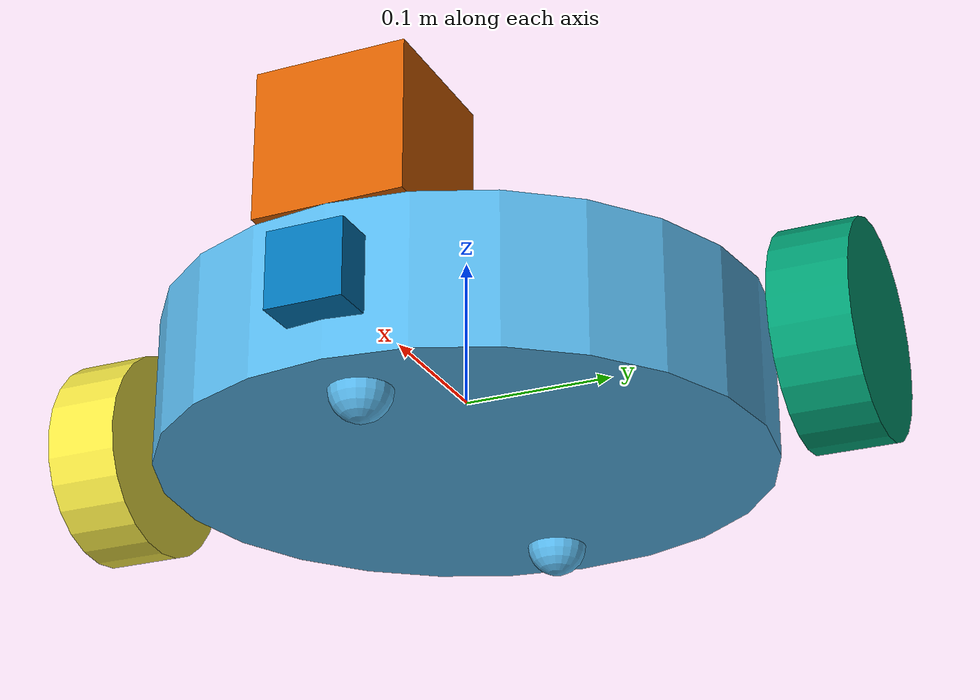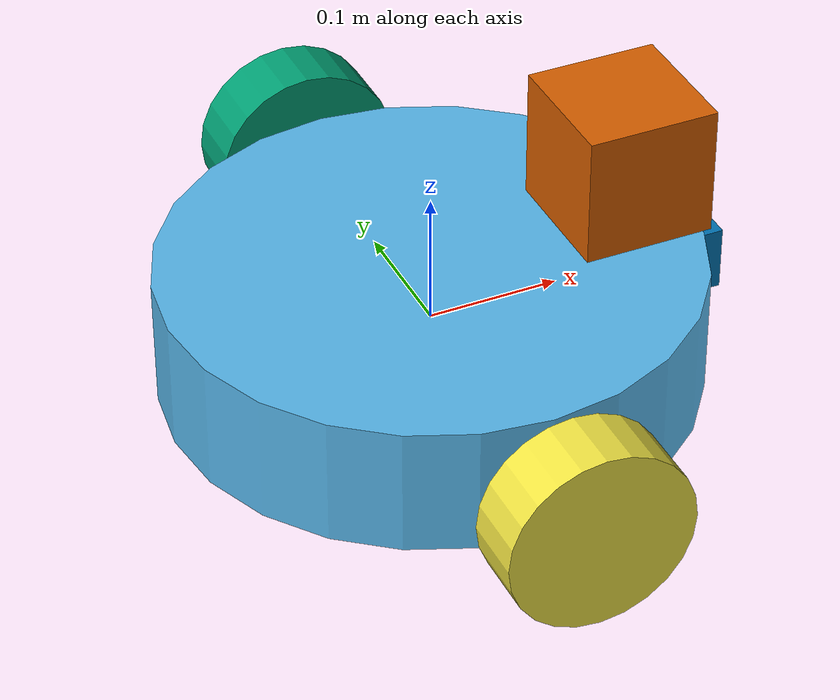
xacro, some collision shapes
<?xml version='1.0'?>

<robot name="my_robot" xmlns:xacro="http://www.ros.org/wiki/xacro">
<xacro:include filename="$(find my_robot)/urdf/my_robot.gazebo" />

<xacro:include filename="default.xacro" />
<xacro:include filename="inertia.xacro" />
<xacro:include filename="chasis.xacro" />
<xacro:include filename="wheel.xacro" />
<xacro:include filename="wheel_with_joint.xacro" />
<xacro:include filename="camera.xacro" />
<xacro:include filename="lidar.xacro" />

	<xacro:wheel_with_joint parent_name="chassis" left="1" radius="${wheel_radius}" heigth="${wheel_heigth}" jointX="0" jointY="${chassis_r+wheel_heigth}" jointZ="0">
	</xacro:wheel_with_joint>
    <xacro:wheel_with_joint parent_name="chassis" left="0" radius="${wheel_radius}" heigth="${wheel_heigth}" jointX="0" jointY="${chassis_r+wheel_heigth}" jointZ="0">
	</xacro:wheel_with_joint>

    <xacro:camera name="camera" />
    <xacro:lidar name="hokuyo" />
</robot>

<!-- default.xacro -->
<robot name="my_robot" xmlns:xacro="http://www.ros.org/wiki/xacro">
	<xacro:property name="wheel_radius" value="0.07"/>
	<xacro:property name="wheel_heigth" value="0.05"/>

	<xacro:property name="wheel_mass" value="5"/>
	<xacro:property name="wheel_origin_angle" value="0 1.5707 1.5707"/>
	<xacro:property name="wheel_origin_position" value="0 0 0"/>

	<xacro:property name="chassis_r" value=".2"/>
	<xacro:property name="chassis_h" value=".1"/>

</robot>

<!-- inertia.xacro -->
<robot name="my_robot" xmlns:xacro="http://www.ros.org/wiki/xacro">

	<xacro:macro name="default_inertial" params="mass">
	<inertial>
		<origin xyz="0 0 0" rpy="0 1.5707 1.5707"/>
		<mass value="${mass}" />
		<inertia ixx="0.1" ixy="0.0" ixz="0.0"
			 iyy="0.1" iyz="0.0" izz="0.1" />
	</inertial>
	</xacro:macro>

	<xacro:macro name="default_inertial_cube" params="mass x y z origin_xyz origin_rpy">

		<inertial>

			<origin xyz="${origin_xyz}" rpy="${origin_rpy}"/>

			<mass value="${mass}" />

			<inertia ixx="${1/12*mass*(z*z+x*x)}" ixy="0.0" ixz="0.0"

				 iyy="${1/12*mass*(y*y+x*x)}" iyz="0.0" izz="${1/12*mass*(y*y+z*z)}" />

		</inertial>

 	</xacro:macro>

	<xacro:macro name="default_inertial_sphere" params="mass r origin_xyz origin_rpy">

		<inertial>

			<origin xyz="${origin_xyz}" rpy="${origin_rpy}"/>

			<mass value="${mass}" />

			<inertia ixx="${2/5*mass*(r*r)}" ixy="0.0" ixz="0.0"

				 iyy="${2/5*mass*(r*r)}" iyz="0.0" izz="${2/5*mass*(r*r)}" />

		</inertial>

 	</xacro:macro>

	<xacro:macro name="default_inertial_cilinder" params="mass r h origin_xyz origin_rpy">

		<inertial>

			<origin xyz="${origin_xyz}" rpy="${origin_rpy}"/>

			<mass value="${mass}" />

			<inertia ixx="${1/2*mass*((3*r*r)+(h*h))}" ixy="0.0" ixz="0.0"

				 iyy="${1/2*mass*((3*r*r)+(h*h))}" iyz="0.0" izz="${1/2*mass*(r*r)}" />

		</inertial>

 	</xacro:macro>

 </robot>

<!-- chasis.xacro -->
<robot name="my_robot" xmlns:xacro="http://www.ros.org/wiki/xacro">

<link name="robot_footprint"></link>

  <joint name="robot_footprint_joint" type="fixed">
    <origin xyz="0 0 0" rpy="0 0 0" />
    <parent link="robot_footprint"/>
    <child link="chassis" />
  </joint>

  <link name='chassis'>
    <pose>0 0 0.1 0 0 0</pose>

    <inertial>
      <mass value="15.0"/>
      <origin xyz="0.0 0 0" rpy=" 0 0 0"/>
      <inertia
          ixx="0.1" ixy="0" ixz="0"
          iyy="0.1" iyz="0"
          izz="0.1"
      />
    </inertial>

    <collision name='collision'>
      <origin xyz="0 0 0" rpy=" 0 0 0"/>
      <geometry>
        <cylinder radius="${chassis_r}" length="${chassis_h}"/>
      </geometry>
    </collision>

    <visual name='chassis_visual'>
      <origin xyz="0 0 0" rpy=" 0 0 0"/>
      <geometry>
        <cylinder radius="${chassis_r}" length="${chassis_h}"/>
      </geometry>
    </visual>

    <collision name='back_caster_collision'>
      <origin xyz="${-chassis_r+0.05} 0 ${-chassis_h/2}" rpy=" 0 0 0"/>
      <geometry>
        <sphere radius="${wheel_radius-chassis_h/2}"/>
      </geometry>
    </collision>

    <visual name='back_caster_visual'>
      <origin xyz="${-chassis_r+0.05} 0 ${-chassis_h/2}" rpy=" 0 0 0"/>
      <geometry>
        <sphere radius="${wheel_radius-chassis_h/2}"/>
      </geometry>
    </visual>

    <collision name='front_caster_collision'>
      <origin xyz="${+chassis_r-0.05} 0 ${-chassis_h/2}" rpy=" 0 0 0"/>
      <geometry>
        <sphere radius="${wheel_radius-chassis_h/2}"/>
      </geometry>
    </collision>

    <visual name='front_caster_visual'>
      <origin xyz="${+chassis_r-0.05} 0 ${-chassis_h/2}" rpy=" 0 0 0"/>
      <geometry>
        <sphere radius="${wheel_radius-chassis_h/2}"/>
      </geometry>
    </visual>

  </link>

  </robot>

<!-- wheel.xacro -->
<robot name="my_robot" xmlns:xacro="http://www.ros.org/wiki/xacro">
	<xacro:macro name="wheel" params="name radius heigth">
	<link name="${name}">
	<visual>
		<origin xyz="${wheel_origin_position}" rpy="${wheel_origin_angle}"/>
		<geometry>
			<cylinder radius="${radius}" length="${heigth}"/>
		</geometry>
	</visual>
	<collision>
		<origin xyz="${wheel_origin_position}" rpy="${wheel_origin_angle}"/>
		<geometry>
			<cylinder radius="${radius}" length="${heigth}"/>
		</geometry>
	</collision>
	<xacro:default_inertial_cilinder mass="${wheel_mass}" r="${radius}" h="${heigth}" origin_xyz="${wheel_origin_position}" origin_rpy="${wheel_origin_angle}"/>
	</link>
	</xacro:macro>
</robot>

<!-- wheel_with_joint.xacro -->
<robot name="my_robot" xmlns:xacro="http://www.ros.org/wiki/xacro">

	<xacro:macro name="wheel_with_joint" params="parent_name left radius heigth jointX jointY jointZ">

		<xacro:property name="name_side" value="right"/>
		<xacro:property name="reflect_side" value="-1"/>
		<!-- evaluation -->
		<xacro:if value="${left}">
			<xacro:property name="name_side" value="left"/>
			<xacro:property name="reflect_side" value="1"/>
		</xacro:if>

		<xacro:wheel name="${name_side}_wheel" radius="${radius}" heigth="${heigth}">
		</xacro:wheel>

		<joint type="continuous" name="${name_side}_wheel_hinge">
			<origin xyz="${jointX} ${reflect_side*jointY} ${jointZ}" rpy="0 0 0"/>
			<child link="${name_side}_wheel"/>
			<parent link="${parent_name}"/>
			<axis xyz="0 1 0" rpy="0 0 0"/>
			<limit effort="10000" velocity="1000"/>
			<joint_properties damping="1.0" friction="1.0"/>
		</joint>

	</xacro:macro>

</robot>

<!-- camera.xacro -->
<robot name="my_robot" xmlns:xacro="http://www.ros.org/wiki/xacro">
	<xacro:macro name="camera" params="name">
	<link name="${name}">
	<visual>
		<origin xyz="0 0 0" rpy="0 0 0"/>
		<geometry>
			<box size="0.05 0.05 0.05" />
		</geometry>
	</visual>
	<collision>
		<origin xyz="0 0 0" rpy="0 0 0"/>
		<geometry>
			<box size="0.05 0.05 0.05" />
		</geometry>
	</collision>
	<xacro:default_inertial mass="0.1" />
	</link>
    <joint type="fixed" name="${name}_hinge">
			<origin xyz="0.2 0 0" rpy="0 0 0"/>
			<child link="${name}"/>
			<parent link="chassis"/>
			<axis xyz="0 1 0" rpy="0 0 0"/>

	</joint>
	</xacro:macro>

</robot>

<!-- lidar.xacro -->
<robot name="my_robot" xmlns:xacro="http://www.ros.org/wiki/xacro">
	<xacro:macro name="lidar" params="name">
	<link name="${name}">
	<visual>
		<origin xyz="0 0 0" rpy="0 0 0"/>
        <geometry>
            <mesh filename="package://my_robot/meshes/hokuyo.dae"/>
        </geometry>
	</visual>
	<collision>
		<origin xyz="0 0 0" rpy="0 0 0"/>
		<geometry>
			<box size="0.1 0.1 0.1" />
		</geometry>
	</collision>
	<xacro:default_inertial mass="0.1" />
	</link>
    <joint type="fixed" name="${name}_joint">
			<origin xyz="0.15 0 0.1" rpy="0 0 0"/>
			<child link="${name}"/>
			<parent link="chassis"/>
			<axis xyz="0 1 0" rpy="0 0 0"/>
	</joint>
	</xacro:macro>

</robot>
